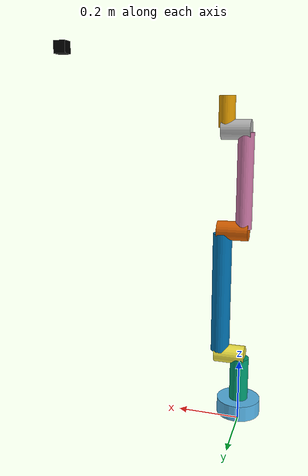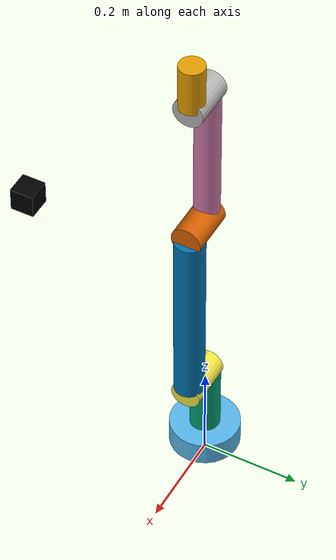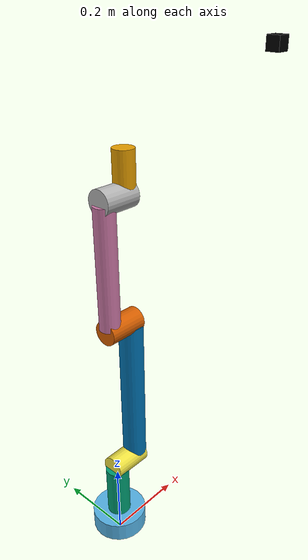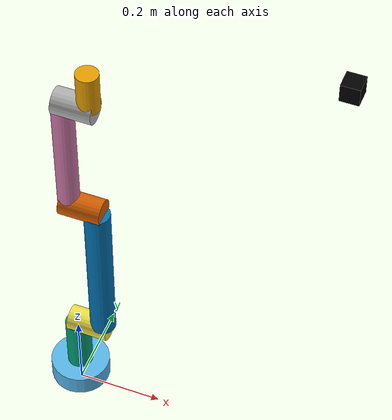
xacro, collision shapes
<?xml version="1.0"?>
<robot xmlns:xacro="http://www.ros.org/wiki/xacro" name="bcr_arm">

  <xacro:arg name="use_gazebo"            default="true" />
  <xacro:arg name="ros2_controllers_path" default="bcr_arm_gazebo/config/ros2_controllers.yaml" />

  <!-- Connexion au monde -->
  <link name="world" />
  <joint name="world_to_base" type="fixed">
    <parent link="world" />
    <child  link="base_link" />
    <origin xyz="0 0 0" rpy="0 0 0" />
  </joint>

  <!-- Inclure et appeler la mécanique du bras -->
  <xacro:include filename="$(find bcr_arm_description)/urdf/mech/bcr_arm_mech.urdf.xacro" />
  <xacro:bcr_arm_kinematics />

  <!-- ROS 2 Control + Plugin Gazebo (uniquement en simulation) -->
  <xacro:if value="$(arg use_gazebo)">

    <xacro:include filename="$(find bcr_arm_description)/urdf/control/gazebo_sim_ros2_control.urdf.xacro" />
    <xacro:load_gazebo_sim_ros2_control_plugin
      robot_name="bcr_arm"
      ros2_controllers_path="$(arg ros2_controllers_path)"
      use_gazebo="$(arg use_gazebo)" />

    <xacro:include filename="$(find bcr_arm_description)/urdf/control/ros2_control.urdf.xacro" />
    <xacro:ros2_control_interfaces />

  </xacro:if>
<xacro:include filename="$(find bcr_arm_description)/urdf/sensors/depth_camera.urdf.xacro"/>
<xacro:depth_camera/>
</robot>

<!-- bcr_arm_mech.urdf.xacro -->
<!-- Import Python's math module for use in expressions -->
<?python import math ?>
<robot xmlns:xacro="http://www.ros.org/wiki/xacro">

  <xacro:property name="l1_len" value="0.200" />
  <xacro:property name="l2_offset" value="0.065" />
  <xacro:property name="l3_len" value="0.410" />
  <xacro:property name="l4_offset" value="-0.065" />
  <xacro:property name="l5_len" value="0.310" />
  <xacro:property name="l6_offset" value="0.060" />
  <xacro:property name="l7_len" value="0.105" />

  <!-- RViz Material Definitions -->
  <material name="color_black">
    <color rgba="0.165 0.165 0.165 1"/>
  </material>
  <material name="color_dark_grey">
    <color rgba="0.376 0.376 0.376 1"/>
  </material>
  <material name="color_grey">
    <color rgba="0.565 0.565 0.565 1"/>
  </material>
  <material name="color_light_grey">
    <color rgba="0.690 0.690 0.690 1"/>
  </material>
  <material name="color_white">
    <color rgba="0.961 0.961 0.961 1"/>
  </material>

  <xacro:macro name="bcr_arm_kinematics">

    <!-- Ignition Gazebo Material Definitions -->
    <gazebo reference="base_link">
      <mu1>0.8</mu1>
      <mu2>0.8</mu2>
    </gazebo>

    <gazebo reference="link1">
      <mu1>0.8</mu1>
      <mu2>0.8</mu2>
    </gazebo>

    <gazebo reference="link2">
      <mu1>0.8</mu1>
      <mu2>0.8</mu2>
    </gazebo>

    <gazebo reference="link3">
      <mu1>0.8</mu1>
      <mu2>0.8</mu2>
    </gazebo>

    <gazebo reference="link4">
      <mu1>0.8</mu1>
      <mu2>0.8</mu2>
    </gazebo>

    <gazebo reference="link5">
      <mu1>0.8</mu1>
      <mu2>0.8</mu2>
    </gazebo>

    <gazebo reference="link6">
      <mu1>0.8</mu1>
      <mu2>0.8</mu2>
    </gazebo>

    <gazebo reference="flange">
      <mu1>0.8</mu1>
      <mu2>0.8</mu2>
    </gazebo>

    <!-- Kinematic Chain -->
    <link name="base_link">
      <visual>
        <geometry>
          <mesh filename="package://bcr_arm_description/meshes/base_joint.dae" scale="0.001 0.001 0.001"/>
        </geometry>
      </visual>
      <collision>
        <origin xyz="0 0 0.050" rpy="0 0 0"/>
        <geometry>
          <cylinder radius="0.070" length="0.050"/>
        </geometry>
      </collision>
      <inertial>
        <mass value="2.0"/>
        <inertia ixx="0.01" ixy="0" ixz="0" iyy="0.01" iyz="0" izz="0.01"/>
      </inertial>
    </link>

    <joint name="joint1" type="revolute">
      <parent link="base_link"/>
      <child link="link1"/>
      <origin xyz="0 0 0.025" rpy="0 0 0"/>
      <axis xyz="0 0 1"/>
      <limit lower="-6.28" upper="6.28" effort="100" velocity="2"/>
    </joint>
    <link name="link1">
      <visual>
        <origin xyz="0 0 0" rpy="0 0 0"/>
        <geometry>
          <mesh filename="package://bcr_arm_description/meshes/joint_shaft_j1.dae" scale="0.001 0.001 0.001"/>
        </geometry>
      </visual>
      <visual>
        <origin xyz="0 0 0" rpy="0 0 0"/>
        <geometry>
          <mesh filename="package://bcr_arm_description/meshes/link_l1.dae" scale="0.001 0.001 0.001"/>
        </geometry>
      </visual>
      <visual>
        <origin xyz="0 0 ${l1_len}" rpy="0 0 0"/>
        <geometry>
          <mesh filename="package://bcr_arm_description/meshes/joint_housing_j2.dae" scale="0.001 0.001 0.001"/>
        </geometry>
      </visual>
      <collision>
        <origin xyz="0 0 ${l1_len/2}" rpy="0 0 0"/>
        <geometry>
          <cylinder radius="0.030" length="${l1_len*0.9}"/>
        </geometry>
      </collision>
      <inertial>
        <mass value="1.5"/>
        <inertia ixx="0.01" ixy="0" ixz="0" iyy="0.01" iyz="0" izz="0.01"/>
      </inertial>
    </link>

    <joint name="joint2" type="revolute">
      <parent link="link1"/>
      <child link="link2"/>
      <origin xyz="0 0 ${l1_len}" rpy="0 0 0"/>
      <axis xyz="1 0 0"/>
      <limit lower="-2.0" upper="2.0" effort="100" velocity="2"/>
    </joint>
    <link name="link2">
      <visual>
        <origin xyz="0 0 0" rpy="0 0 0"/>
        <geometry>
          <mesh filename="package://bcr_arm_description/meshes/joint_output_j2.dae" scale="0.001 0.001 0.001"/>
        </geometry>
      </visual>
      <visual>
        <origin xyz="${l2_offset} 0 0" rpy="0 0 0"/>
        <geometry>
          <mesh filename="package://bcr_arm_description/meshes/joint_housing_j3.dae" scale="0.001 0.001 0.001"/>
        </geometry>
      </visual>
      <collision>
        <origin xyz="${l2_offset/2} 0 0" rpy="0 ${pi/2} 0"/>
        <geometry>
          <cylinder radius="0.030" length="${math.fabs(l2_offset)*1.5}"/>
        </geometry>
      </collision>
      <inertial>
        <mass value="1.5"/>
        <inertia ixx="0.01" ixy="0" ixz="0" iyy="0.01" iyz="0" izz="0.01"/>
      </inertial>
    </link>

    <joint name="joint3" type="revolute">
      <parent link="link2"/>
      <child link="link3"/>
      <origin xyz="${l2_offset} 0 0" rpy="0 0 0"/>
      <axis xyz="0 0 1"/>
      <limit lower="-6.28" upper="6.28" effort="100" velocity="2"/>
    </joint>
    <link name="link3">
      <visual>
        <origin xyz="0 0 0" rpy="0 0 0"/>
        <geometry>
          <mesh filename="package://bcr_arm_description/meshes/joint_shaft_j3.dae" scale="0.001 0.001 0.001"/>
        </geometry>
      </visual>
      <visual>
        <origin xyz="0 0 0" rpy="0 0 0"/>
        <geometry>
          <mesh filename="package://bcr_arm_description/meshes/link_l2.dae" scale="0.001 0.001 0.001"/>
        </geometry>
      </visual>
      <visual>
        <origin xyz="0 0 ${l3_len}" rpy="0 0 0"/>
        <geometry>
          <mesh filename="package://bcr_arm_description/meshes/joint_housing_j4.dae" scale="0.001 0.001 0.001"/>
        </geometry>
      </visual>
      <collision>
        <origin xyz="0 0 ${l3_len/2}" rpy="0 0 0"/>
        <geometry>
          <cylinder radius="0.030" length="${l3_len*0.95}"/>
        </geometry>
      </collision>
      <inertial>
        <mass value="1.2"/>
        <inertia ixx="0.01" ixy="0" ixz="0" iyy="0.01" iyz="0" izz="0.01"/>
      </inertial>
    </link>

    <joint name="joint4" type="revolute">
      <parent link="link3"/>
      <child link="link4"/>
      <origin xyz="0 0 ${l3_len}" rpy="0 0 0"/>
      <axis xyz="1 0 0"/>
      <limit lower="-2.0" upper="2.0" effort="80" velocity="2"/>
    </joint>
    <link name="link4">
      <visual>
        <origin xyz="0 0 0" rpy="0 0 0"/>
        <geometry>
          <mesh filename="package://bcr_arm_description/meshes/joint_output_j4.dae" scale="0.001 0.001 0.001"/>
        </geometry>
      </visual>
      <visual>
        <origin xyz="${l4_offset} 0 0" rpy="0 0 0"/>
        <geometry>
          <mesh filename="package://bcr_arm_description/meshes/joint_housing_j5.dae" scale="0.001 0.001 0.001"/>
        </geometry>
      </visual>
      <collision>
        <origin xyz="${l4_offset/2} 0 0" rpy="0 ${pi/2} 0"/>
        <geometry>
          <cylinder radius="0.030" length="${math.fabs(l4_offset)*1.5}"/>
        </geometry>
      </collision>
      <inertial>
        <mass value="1.0"/>
        <inertia ixx="0.01" ixy="0" ixz="0" iyy="0.01" iyz="0" izz="0.01"/>
      </inertial>
    </link>

    <joint name="joint5" type="revolute">
      <parent link="link4"/>
      <child link="link5"/>
      <origin xyz="${l4_offset} 0 0" rpy="0 0 0"/>
      <axis xyz="0 0 1"/>
      <limit lower="-6.28" upper="6.28" effort="50" velocity="3"/>
    </joint>
    <link name="link5">
      <visual>
        <origin xyz="0 0 0" rpy="0 0 0"/>
        <geometry>
          <mesh filename="package://bcr_arm_description/meshes/joint_shaft_j5.dae" scale="0.001 0.001 0.001"/>
        </geometry>
      </visual>
      <visual>
        <origin xyz="0 0 0" rpy="0 0 0"/>
        <geometry>
          <mesh filename="package://bcr_arm_description/meshes/link_l3.dae" scale="0.001 0.001 0.001"/>
        </geometry>
      </visual>
      <visual>
        <origin xyz="0 0 ${l5_len}" rpy="0 0 0"/>
        <geometry>
          <mesh filename="package://bcr_arm_description/meshes/joint_housing_j6.dae" scale="0.001 0.001 0.001"/>
        </geometry>
      </visual>
      <collision>
        <origin xyz="0 0 ${l5_len/2}" rpy="0 0 0"/>
        <geometry>
          <cylinder radius="0.025" length="${l5_len*0.95}"/>
        </geometry>
      </collision>
      <inertial>
        <mass value="0.8"/>
        <inertia ixx="0.01" ixy="0" ixz="0" iyy="0.01" iyz="0" izz="0.01"/>
      </inertial>
    </link>

    <joint name="joint6" type="revolute">
      <parent link="link5"/>
      <child link="link6"/>
      <origin xyz="0 0 ${l5_len}" rpy="0 0 0"/>
      <axis xyz="1 0 0"/>
      <limit lower="-2.0" upper="2.0" effort="50" velocity="3"/>
    </joint>
    <link name="link6">
      <visual>
        <origin xyz="0 0 0" rpy="0 0 0"/>
        <geometry>
          <mesh filename="package://bcr_arm_description/meshes/joint_output_j6.dae" scale="0.001 0.001 0.001"/>
        </geometry>
      </visual>
      <visual>
        <origin xyz="${l6_offset} 0 0" rpy="0 0 0"/>
        <geometry>
          <mesh filename="package://bcr_arm_description/meshes/joint_housing_j7.dae" scale="0.001 0.001 0.001"/>
        </geometry>
      </visual>
      <collision>
        <origin xyz="${l6_offset/2} 0 0" rpy="0 ${pi/2} 0"/>
        <geometry>
          <cylinder radius="0.030" length="${math.fabs(l6_offset)*1.5}"/>
        </geometry>
      </collision>
      <inertial>
        <mass value="0.5"/>
        <inertia ixx="0.01" ixy="0" ixz="0" iyy="0.01" iyz="0" izz="0.01"/>
      </inertial>
    </link>

    <joint name="joint7" type="revolute">
      <parent link="link6"/>
      <child link="flange"/>
      <origin xyz="${l6_offset} 0 0" rpy="0 0 0"/>
      <axis xyz="0 0 1"/>
      <limit lower="-6.28" upper="6.28" effort="30" velocity="4"/>
    </joint>
    <link name="flange">
      <visual>
        <origin xyz="0 0 0" rpy="0 0 0"/>
        <geometry>
          <mesh filename="package://bcr_arm_description/meshes/joint_shaft_j7.dae" scale="0.001 0.001 0.001"/>
        </geometry>
      </visual>
      <visual>
        <origin xyz="0 0 0" rpy="0 0 0"/>
        <geometry>
          <mesh filename="package://bcr_arm_description/meshes/link_l4.dae" scale="0.001 0.001 0.001"/>
        </geometry>
      </visual>
      <visual>
        <origin xyz="0 0 ${l7_len}" rpy="0 0 0"/>
        <geometry>
          <mesh filename="package://bcr_arm_description/meshes/tool_flange.dae" scale="0.001 0.001 0.001"/>
        </geometry>
      </visual>
      <collision>
        <origin xyz="0 0 ${l7_len/2}" rpy="0 0 0"/>
        <geometry>
          <cylinder radius="0.025" length="${l7_len*0.9}"/>
        </geometry>
      </collision>
      <inertial>
        <mass value="0.3"/>
        <inertia ixx="0.01" ixy="0" ixz="0" iyy="0.01" iyz="0" izz="0.01"/>
      </inertial>
    </link>
  </xacro:macro>
</robot>

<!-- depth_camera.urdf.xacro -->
<robot xmlns:xacro="http://www.ros.org/wiki/xacro">
  <xacro:macro name="depth_camera">
    <link name="camera_link">
      <visual>
        <geometry> <box size="0.04 0.04 0.04"/></geometry>
        <material name="black"><color rgba="0 0 0 1"/></material>
      </visual>
      <collision>
        <geometry> <box size="0.04 0.04 0.04"/></geometry>
      </collision>
      <inertial>
        <mass value="0.05"/>
        <inertia ixx="1e-5" iyy="1e-5" izz="1e-6"
                 ixy="0" ixz="0"
                 iyz="0"/>
      </inertial>
    </link>

    <joint name="world_to_camera" type="fixed">
      <parent link="world"/>
      <child link="camera_link"/>
      <origin xyz="0.6 0 1.2" rpy="0 1.5708 0"/>
    </joint>

<gazebo reference="camera_link">
  <sensor name="depth_camera" type="rgbd_camera">
    <update_rate>15</update_rate>
    <topic>camera</topic>
    <camera>
      <horizontal_fov>1.047</horizontal_fov>
      <image><width>640</width> <height>480</height></image>
      <clip><near>0.1</near><far>5.0</far></clip>
    </camera>
  </sensor>
</gazebo>
  </xacro:macro>
</robot>
